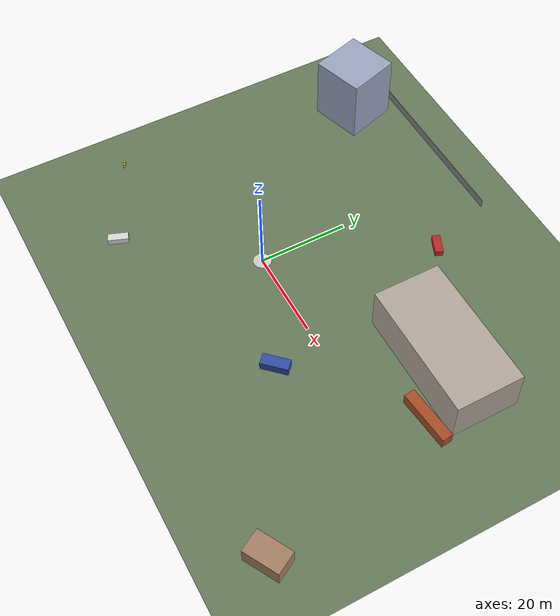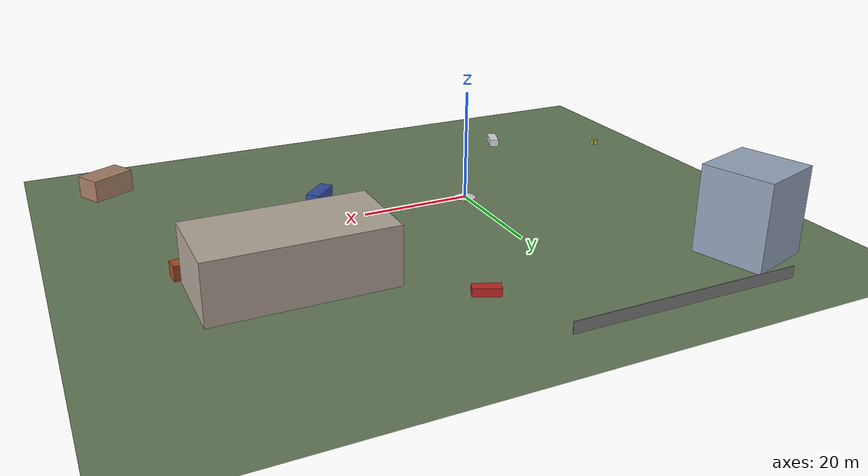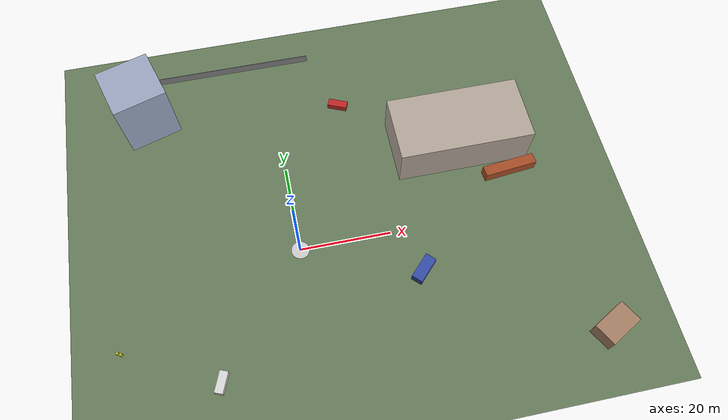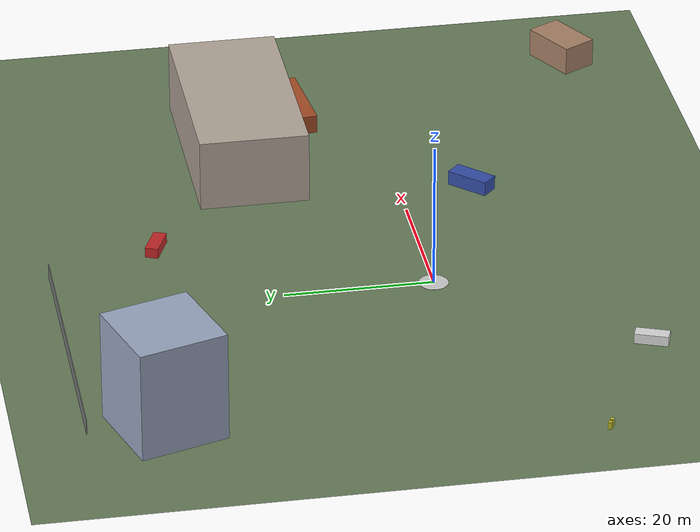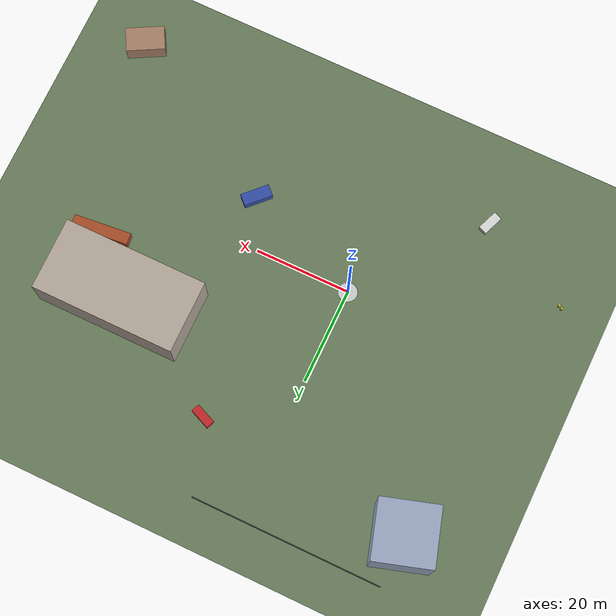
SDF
<?xml version="1.0" ?>
<sdf version="1.9">
  <world name="inspection_site">

    <!-- Physics (match PX4 default world settings) -->
    <physics type="ode">
      <max_step_size>0.004</max_step_size>
      <real_time_factor>1.0</real_time_factor>
      <real_time_update_rate>250</real_time_update_rate>
    </physics>

    <!-- Gravity -->
    <gravity>0 0 -9.8</gravity>

    <!-- Magnetic field (required for PX4 magnetometer / heading reference) -->
    <magnetic_field>6e-06 2.3e-05 -4.2e-05</magnetic_field>

    <!-- Atmosphere -->
    <atmosphere type="adiabatic"/>

    <!-- Spherical coordinates (GPS origin for NAVSAT sensor) -->
    <spherical_coordinates>
      <surface_model>EARTH_WGS84</surface_model>
      <world_frame_orientation>ENU</world_frame_orientation>
      <latitude_deg>47.397971057728974</latitude_deg>
      <longitude_deg>8.546163739800146</longitude_deg>
      <elevation>0</elevation>
    </spherical_coordinates>

    <!-- Plugins -->
    <plugin filename="gz-sim-physics-system" name="gz::sim::systems::Physics" />
    <plugin filename="gz-sim-scene-broadcaster-system" name="gz::sim::systems::SceneBroadcaster" />
    <plugin filename="gz-sim-user-commands-system" name="gz::sim::systems::UserCommands" />
    <plugin filename="gz-sim-sensors-system" name="gz::sim::systems::Sensors">
      <render_engine>ogre2</render_engine>
    </plugin>
    <plugin filename="gz-sim-imu-system" name="gz::sim::systems::Imu" />
    <plugin filename="gz-sim-magnetometer-system" name="gz::sim::systems::Magnetometer" />
    <plugin filename="gz-sim-air-pressure-system" name="gz::sim::systems::AirPressure" />

    <!-- Lighting -->
    <light type="directional" name="sun">
      <cast_shadows>true</cast_shadows>
      <pose>0 0 100 0 0 0</pose>
      <diffuse>0.95 0.92 0.85 1</diffuse>
      <specular>0.3 0.3 0.3 1</specular>
      <attenuation>
        <range>1000</range>
        <constant>0.9</constant>
        <linear>0.01</linear>
        <quadratic>0.001</quadratic>
      </attenuation>
      <direction>-0.5 0.3 -0.9</direction>
    </light>

    <light type="directional" name="fill_light">
      <cast_shadows>false</cast_shadows>
      <pose>0 0 50 0 0 0</pose>
      <diffuse>0.3 0.35 0.4 1</diffuse>
      <specular>0.05 0.05 0.05 1</specular>
      <direction>0.5 -0.3 -0.7</direction>
    </light>

    <!-- Sky -->
    <scene>
      <ambient>0.6 0.6 0.65 1</ambient>
      <background>0.55 0.7 0.9 1</background>
      <shadows>true</shadows>
    </scene>

    <!-- Ground Plane -->
    <model name="ground_plane">
      <static>true</static>
      <link name="link">
        <collision name="collision">
          <geometry>
            <plane>
              <normal>0 0 1</normal>
              <size>500 500</size>
            </plane>
          </geometry>
        </collision>
        <visual name="visual">
          <geometry>
            <plane>
              <normal>0 0 1</normal>
              <size>500 500</size>
            </plane>
          </geometry>
          <material>
            <ambient>0.35 0.42 0.3 1</ambient>
            <diffuse>0.4 0.48 0.35 1</diffuse>
          </material>
        </visual>
      </link>
    </model>

    <!-- Landing Pad (at origin) -->
    <model name="landing_pad">
      <static>true</static>
      <pose>0 0 0.01 0 0 0</pose>
      <link name="link">
        <visual name="visual">
          <geometry>
            <cylinder>
              <radius>2.0</radius>
              <length>0.02</length>
            </cylinder>
          </geometry>
          <material>
            <ambient>0.7 0.7 0.7 1</ambient>
            <diffuse>0.8 0.8 0.8 1</diffuse>
          </material>
        </visual>
      </link>
    </model>

    <!-- === BUILDINGS (inspection targets) === -->

    <!-- Main warehouse -->
    <model name="warehouse">
      <static>true</static>
      <pose>40 20 5 0 0 0</pose>
      <link name="link">
        <collision name="collision">
          <geometry>
            <box><size>30 15 10</size></box>
          </geometry>
        </collision>
        <visual name="visual">
          <geometry>
            <box><size>30 15 10</size></box>
          </geometry>
          <material>
            <ambient>0.6 0.55 0.5 1</ambient>
            <diffuse>0.7 0.65 0.6 1</diffuse>
          </material>
        </visual>
      </link>
    </model>

    <!-- Office building -->
    <model name="office_building">
      <static>true</static>
      <pose>-30 40 7.5 0 0 0.3</pose>
      <link name="link">
        <collision name="collision">
          <geometry>
            <box><size>12 12 15</size></box>
          </geometry>
        </collision>
        <visual name="visual">
          <geometry>
            <box><size>12 12 15</size></box>
          </geometry>
          <material>
            <ambient>0.5 0.55 0.65 1</ambient>
            <diffuse>0.6 0.65 0.75 1</diffuse>
          </material>
        </visual>
      </link>
    </model>

    <!-- Storage shed -->
    <model name="shed">
      <static>true</static>
      <pose>60 -30 2 0 0 0.5</pose>
      <link name="link">
        <collision name="collision">
          <geometry>
            <box><size>8 5 4</size></box>
          </geometry>
        </collision>
        <visual name="visual">
          <geometry>
            <box><size>8 5 4</size></box>
          </geometry>
          <material>
            <ambient>0.55 0.4 0.3 1</ambient>
            <diffuse>0.65 0.5 0.4 1</diffuse>
          </material>
        </visual>
      </link>
    </model>

    <!-- === VEHICLES (detection targets) === -->

    <!-- Truck -->
    <model name="truck_1">
      <static>true</static>
      <pose>25 -10 1 0 0 0.8</pose>
      <link name="link">
        <collision name="collision">
          <geometry>
            <box><size>6 2.5 2</size></box>
          </geometry>
        </collision>
        <visual name="visual">
          <geometry>
            <box><size>6 2.5 2</size></box>
          </geometry>
          <material>
            <ambient>0.15 0.25 0.55 1</ambient>
            <diffuse>0.2 0.3 0.65 1</diffuse>
          </material>
        </visual>
      </link>
    </model>

    <!-- Car 1 -->
    <model name="car_1">
      <static>true</static>
      <pose>15 35 0.7 0 0 -0.4</pose>
      <link name="link">
        <collision name="collision">
          <geometry>
            <box><size>4.5 1.8 1.4</size></box>
          </geometry>
        </collision>
        <visual name="visual">
          <geometry>
            <box><size>4.5 1.8 1.4</size></box>
          </geometry>
          <material>
            <ambient>0.6 0.1 0.1 1</ambient>
            <diffuse>0.75 0.15 0.15 1</diffuse>
          </material>
        </visual>
      </link>
    </model>

    <!-- Car 2 -->
    <model name="car_2">
      <static>true</static>
      <pose>-20 -25 0.7 0 0 1.2</pose>
      <link name="link">
        <collision name="collision">
          <geometry>
            <box><size>4.5 1.8 1.4</size></box>
          </geometry>
        </collision>
        <visual name="visual">
          <geometry>
            <box><size>4.5 1.8 1.4</size></box>
          </geometry>
          <material>
            <ambient>0.7 0.7 0.7 1</ambient>
            <diffuse>0.85 0.85 0.85 1</diffuse>
          </material>
        </visual>
      </link>
    </model>

    <!-- === OBSTACLES / DEBRIS === -->

    <!-- Shipping container -->
    <model name="container_1">
      <static>true</static>
      <pose>50 10 1.3 0 0 0.1</pose>
      <link name="link">
        <collision name="collision">
          <geometry>
            <box><size>12 2.4 2.6</size></box>
          </geometry>
        </collision>
        <visual name="visual">
          <geometry>
            <box><size>12 2.4 2.6</size></box>
          </geometry>
          <material>
            <ambient>0.55 0.25 0.1 1</ambient>
            <diffuse>0.65 0.3 0.15 1</diffuse>
          </material>
        </visual>
      </link>
    </model>

    <!-- Barrel cluster -->
    <model name="barrel_1">
      <static>true</static>
      <pose>-40 -15 0.5 0 0 0</pose>
      <link name="link">
        <visual name="visual">
          <geometry>
            <cylinder>
              <radius>0.3</radius>
              <length>1.0</length>
            </cylinder>
          </geometry>
          <material>
            <ambient>0.6 0.6 0.1 1</ambient>
            <diffuse>0.7 0.7 0.15 1</diffuse>
          </material>
        </visual>
      </link>
    </model>

    <model name="barrel_2">
      <static>true</static>
      <pose>-39.3 -15.4 0.5 0 0 0</pose>
      <link name="link">
        <visual name="visual">
          <geometry>
            <cylinder>
              <radius>0.3</radius>
              <length>1.0</length>
            </cylinder>
          </geometry>
          <material>
            <ambient>0.6 0.6 0.1 1</ambient>
            <diffuse>0.7 0.7 0.15 1</diffuse>
          </material>
        </visual>
      </link>
    </model>

    <!-- Fence section -->
    <model name="fence">
      <static>true</static>
      <pose>-10 50 1 0 0 0</pose>
      <link name="link">
        <visual name="visual">
          <geometry>
            <box><size>40 0.1 2</size></box>
          </geometry>
          <material>
            <ambient>0.4 0.4 0.4 1</ambient>
            <diffuse>0.5 0.5 0.5 1</diffuse>
          </material>
        </visual>
      </link>
    </model>

  </world>
</sdf>
